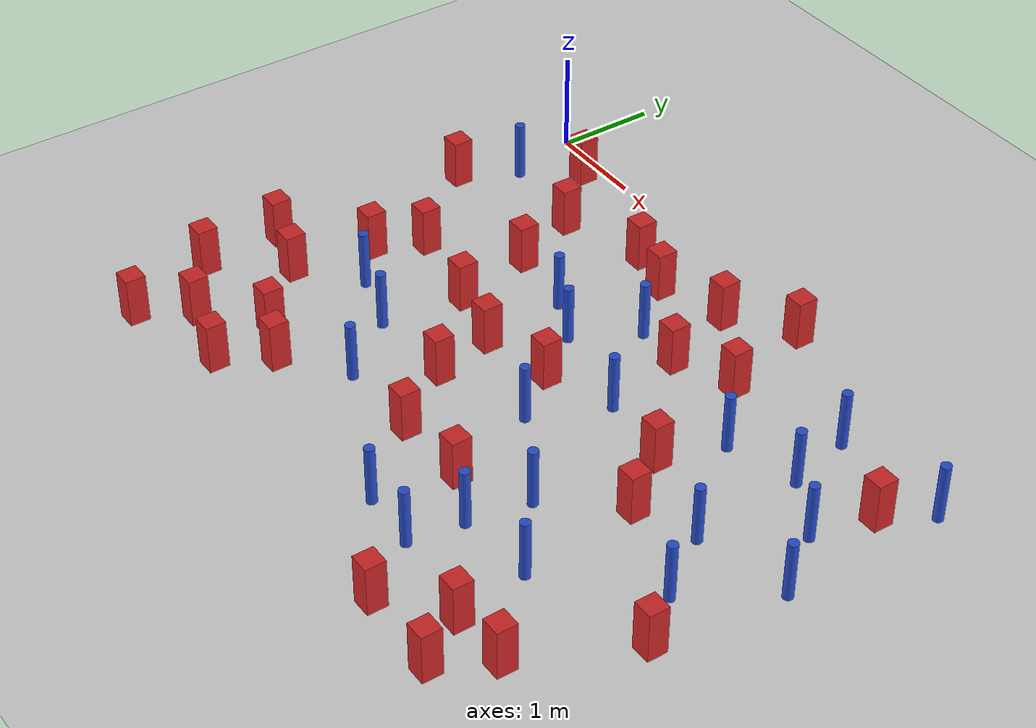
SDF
<sdf version="1.6">
 <world name="default">
  <model name="ground_plane">
   <static>1</static>
   <link name="link">
    <collision name="collision">
     <geometry><plane><normal>0 0 1</normal><size>100 100</size></plane></geometry>
     <surface><friction><ode><mu>100</mu><mu2>50</mu2></ode></friction></surface>
    </collision>
    <visual name="visual">
     <cast_shadows>0</cast_shadows>
     <geometry><plane><normal>0 0 1</normal><size>100 100</size></plane></geometry>
     <material>
      <ambient>1.0 1.0 1.0 1.0</ambient>
      <diffuse>0.8 0.8 0.8 1.0</diffuse>
      <specular>0.01 0.01 0.01 1.000000</specular>
     </material>
    </visual>
   </link>
  </model>
  <model name="pole_obstacle2">
   <static>true</static>
   <pose>5.19550027576 -0.776458486544 -9.47619616065e-06 5.49618799737e-07 2.36310414061e-07 -1.550905348e-07</pose>
   <link name="link">
    <pose>0 0 0.3 0 -0 0</pose>
    <inertial>
     <mass>1</mass>
     <inertia><ixx>0.145833</ixx><ixy>0</ixy><ixz>0</ixz><iyy>0.145833</iyy><iyz>0</iyz><izz>0.125</izz></inertia>
    </inertial>
    <collision name="collision">
     <geometry><cylinder><radius>0.05</radius><length>.6</length></cylinder></geometry>
    </collision>
    <visual name="visual">
     <geometry><cylinder><radius>0.05</radius><length>.6</length></cylinder></geometry>
     <material>
      <script><name>Gazebo/Blue</name><uri>file://media/materials/scripts/gazebo.material</uri></script>
     </material>
    </visual>
   </link>
  </model>
  <model name="square_post_obstacle15">
   <static>true</static>
   <pose>1.47501391211 -1.55873065129 -6.11067671241e-07 -5.50515727128e-06 -8.79689657224e-07 2.37013304536e-05</pose>
   <link name="link">
    <pose>0 0 0.25 0 -0 0</pose>
    <inertial>
     <mass>100</mass>
     <inertia>
      <ixx>0.166667</ixx>
      <ixy>0</ixy>
      <ixz>0</ixz>
      <iyy>0.166667</iyy>
      <iyz>0</iyz>
      <izz>0.166667</izz>
     </inertia>
    </inertial>
    <collision name="collision"><geometry><box><size>.2 .2 .5</size></box></geometry></collision>
    <visual name="visual">
     <geometry><box><size>.2 .2 .5</size></box></geometry>
     <material>
      <script><name>Gazebo/Red</name><uri>file://media/materials/scripts/gazebo.material</uri></script>
     </material>
    </visual>
   </link>
  </model>
  <model name="square_post_obstacle21">
   <static>true</static>
   <pose>0.481305501082 -2.64464810082 -6.11067671241e-07 -5.50515727128e-06 -8.79689657224e-07 2.37013304536e-05</pose>
   <link name="link">
    <pose>0 0 0.25 0 -0 0</pose>
    <inertial>
     <mass>100</mass>
     <inertia>
      <ixx>0.166667</ixx>
      <ixy>0</ixy>
      <ixz>0</ixz>
      <iyy>0.166667</iyy>
      <iyz>0</iyz>
      <izz>0.166667</izz>
     </inertia>
    </inertial>
    <collision name="collision"><geometry><box><size>.2 .2 .5</size></box></geometry></collision>
    <visual name="visual">
     <geometry><box><size>.2 .2 .5</size></box></geometry>
     <material>
      <script><name>Gazebo/Red</name><uri>file://media/materials/scripts/gazebo.material</uri></script>
     </material>
    </visual>
   </link>
  </model>
  <model name="square_post_obstacle23">
   <static>true</static>
   <pose>-0.0821357140511 -1.2840179583 -6.11067671241e-07 -5.50515727128e-06 -8.79689657224e-07 2.37013304536e-05</pose>
   <link name="link">
    <pose>0 0 0.25 0 -0 0</pose>
    <inertial>
     <mass>100</mass>
     <inertia>
      <ixx>0.166667</ixx>
      <ixy>0</ixy>
      <ixz>0</ixz>
      <iyy>0.166667</iyy>
      <iyz>0</iyz>
      <izz>0.166667</izz>
     </inertia>
    </inertial>
    <collision name="collision"><geometry><box><size>.2 .2 .5</size></box></geometry></collision>
    <visual name="visual">
     <geometry><box><size>.2 .2 .5</size></box></geometry>
     <material>
      <script><name>Gazebo/Red</name><uri>file://media/materials/scripts/gazebo.material</uri></script>
     </material>
    </visual>
   </link>
  </model>
  <model name="pole_obstacle20">
   <static>true</static>
   <pose>4.18166565589 -4.01385830783 -9.47619616065e-06 5.49618799737e-07 2.36310414037e-07 -1.55090534813e-07</pose>
   <link name="link">
    <pose>0 0 0.3 0 -0 0</pose>
    <inertial>
     <mass>1</mass>
     <inertia><ixx>0.145833</ixx><ixy>0</ixy><ixz>0</ixz><iyy>0.145833</iyy><iyz>0</iyz><izz>0.125</izz></inertia>
    </inertial>
    <collision name="collision">
     <geometry><cylinder><radius>0.05</radius><length>.6</length></cylinder></geometry>
    </collision>
    <visual name="visual">
     <geometry><cylinder><radius>0.05</radius><length>.6</length></cylinder></geometry>
     <material>
      <script><name>Gazebo/Blue</name><uri>file://media/materials/scripts/gazebo.material</uri></script>
     </material>
    </visual>
   </link>
  </model>
  <model name="square_post_obstacle33">
   <static>true</static>
   <pose>-0.207663381894 -3.29096670335 -6.11067671241e-07 -5.50515727128e-06 -8.79689657224e-07 2.37013304536e-05</pose>
   <link name="link">
    <pose>0 0 0.25 0 -0 0</pose>
    <inertial>
     <mass>100</mass>
     <inertia>
      <ixx>0.166667</ixx>
      <ixy>0</ixy>
      <ixz>0</ixz>
      <iyy>0.166667</iyy>
      <iyz>0</iyz>
      <izz>0.166667</izz>
     </inertia>
    </inertial>
    <collision name="collision"><geometry><box><size>.2 .2 .5</size></box></geometry></collision>
    <visual name="visual">
     <geometry><box><size>.2 .2 .5</size></box></geometry>
     <material>
      <script><name>Gazebo/Red</name><uri>file://media/materials/scripts/gazebo.material</uri></script>
     </material>
    </visual>
   </link>
  </model>
  <model name="square_post_obstacle37">
   <static>true</static>
   <pose>2.30294669285 -2.53560770413 -6.11067671241e-07 -5.50515727128e-06 -8.79689657224e-07 2.37013304536e-05</pose>
   <link name="link">
    <pose>0 0 0.25 0 -0 0</pose>
    <inertial>
     <mass>100</mass>
     <inertia>
      <ixx>0.166667</ixx>
      <ixy>0</ixy>
      <ixz>0</ixz>
      <iyy>0.166667</iyy>
      <iyz>0</iyz>
      <izz>0.166667</izz>
     </inertia>
    </inertial>
    <collision name="collision"><geometry><box><size>.2 .2 .5</size></box></geometry></collision>
    <visual name="visual">
     <geometry><box><size>.2 .2 .5</size></box></geometry>
     <material>
      <script><name>Gazebo/Red</name><uri>file://media/materials/scripts/gazebo.material</uri></script>
     </material>
    </visual>
   </link>
  </model>
  <model name="pole_obstacle39">
   <static>true</static>
   <pose>5.41920149734 -2.54125548383 -9.47619616065e-06 5.49618799738e-07 2.36310414051e-07 -1.55090534805e-07</pose>
   <link name="link">
    <pose>0 0 0.3 0 -0 0</pose>
    <inertial>
     <mass>1</mass>
     <inertia><ixx>0.145833</ixx><ixy>0</ixy><ixz>0</ixz><iyy>0.145833</iyy><iyz>0</iyz><izz>0.125</izz></inertia>
    </inertial>
    <collision name="collision">
     <geometry><cylinder><radius>0.05</radius><length>.6</length></cylinder></geometry>
    </collision>
    <visual name="visual">
     <geometry><cylinder><radius>0.05</radius><length>.6</length></cylinder></geometry>
     <material>
      <script><name>Gazebo/Blue</name><uri>file://media/materials/scripts/gazebo.material</uri></script>
     </material>
    </visual>
   </link>
  </model>
  <model name="pole_obstacle45">
   <static>true</static>
   <pose>4.66149572074 -1.61816872461 -9.47619616065e-06 5.49618799738e-07 2.36310414071e-07 -1.55090534796e-07</pose>
   <link name="link">
    <pose>0 0 0.3 0 -0 0</pose>
    <inertial>
     <mass>1</mass>
     <inertia><ixx>0.145833</ixx><ixy>0</ixy><ixz>0</ixz><iyy>0.145833</iyy><iyz>0</iyz><izz>0.125</izz></inertia>
    </inertial>
    <collision name="collision">
     <geometry><cylinder><radius>0.05</radius><length>.6</length></cylinder></geometry>
    </collision>
    <visual name="visual">
     <geometry><cylinder><radius>0.05</radius><length>.6</length></cylinder></geometry>
     <material>
      <script><name>Gazebo/Blue</name><uri>file://media/materials/scripts/gazebo.material</uri></script>
     </material>
    </visual>
   </link>
  </model>
  <model name="square_post_obstacle43">
   <static>true</static>
   <pose>3.66844501053 -3.76708287338 -6.11067671241e-07 -5.50515727128e-06 -8.79689657224e-07 2.37013304536e-05</pose>
   <link name="link">
    <pose>0 0 0.25 0 -0 0</pose>
    <inertial>
     <mass>100</mass>
     <inertia>
      <ixx>0.166667</ixx>
      <ixy>0</ixy>
      <ixz>0</ixz>
      <iyy>0.166667</iyy>
      <iyz>0</iyz>
      <izz>0.166667</izz>
     </inertia>
    </inertial>
    <collision name="collision"><geometry><box><size>.2 .2 .5</size></box></geometry></collision>
    <visual name="visual">
     <geometry><box><size>.2 .2 .5</size></box></geometry>
     <material>
      <script><name>Gazebo/Red</name><uri>file://media/materials/scripts/gazebo.material</uri></script>
     </material>
    </visual>
   </link>
  </model>
  <model name="square_post_obstacle47">
   <static>true</static>
   <pose>5.08457983979 -4.68502493275 -6.11067671241e-07 -5.50515727128e-06 -8.79689657224e-07 2.37013304536e-05</pose>
   <link name="link">
    <pose>0 0 0.25 0 -0 0</pose>
    <inertial>
     <mass>100</mass>
     <inertia>
      <ixx>0.166667</ixx>
      <ixy>0</ixy>
      <ixz>0</ixz>
      <iyy>0.166667</iyy>
      <iyz>0</iyz>
      <izz>0.166667</izz>
     </inertia>
    </inertial>
    <collision name="collision"><geometry><box><size>.2 .2 .5</size></box></geometry></collision>
    <visual name="visual">
     <geometry><box><size>.2 .2 .5</size></box></geometry>
     <material>
      <script><name>Gazebo/Red</name><uri>file://media/materials/scripts/gazebo.material</uri></script>
     </material>
    </visual>
   </link>
  </model>
  <model name="pole_obstacle53">
   <static>true</static>
   <pose>4.09706377436 -4.54481526896 -9.47619616065e-06 5.49618799737e-07 2.36310414037e-07 -1.55090534814e-07</pose>
   <link name="link">
    <pose>0 0 0.3 0 -0 0</pose>
    <inertial>
     <mass>1</mass>
     <inertia><ixx>0.145833</ixx><ixy>0</ixy><ixz>0</ixz><iyy>0.145833</iyy><iyz>0</iyz><izz>0.125</izz></inertia>
    </inertial>
    <collision name="collision">
     <geometry><cylinder><radius>0.05</radius><length>.6</length></cylinder></geometry>
    </collision>
    <visual name="visual">
     <geometry><cylinder><radius>0.05</radius><length>.6</length></cylinder></geometry>
     <material>
      <script><name>Gazebo/Blue</name><uri>file://media/materials/scripts/gazebo.material</uri></script>
     </material>
    </visual>
   </link>
  </model>
  <model name="square_post_obstacle65">
   <static>true</static>
   <pose>2.07261287586 -0.609898798165 -6.11067671241e-07 -5.50515727128e-06 -8.79689657224e-07 2.37013304536e-05</pose>
   <link name="link">
    <pose>0 0 0.25 0 -0 0</pose>
    <inertial>
     <mass>100</mass>
     <inertia>
      <ixx>0.166667</ixx>
      <ixy>0</ixy>
      <ixz>0</ixz>
      <iyy>0.166667</iyy>
      <iyz>0</iyz>
      <izz>0.166667</izz>
     </inertia>
    </inertial>
    <collision name="collision"><geometry><box><size>.2 .2 .5</size></box></geometry></collision>
    <visual name="visual">
     <geometry><box><size>.2 .2 .5</size></box></geometry>
     <material>
      <script><name>Gazebo/Red</name><uri>file://media/materials/scripts/gazebo.material</uri></script>
     </material>
    </visual>
   </link>
  </model>
  <model name="square_post_obstacle69">
   <static>true</static>
   <pose>6.07967221946 -1.1719388864 -6.11067671241e-07 -5.50515727128e-06 -8.79689657224e-07 2.37013304536e-05</pose>
   <link name="link">
    <pose>0 0 0.25 0 -0 0</pose>
    <inertial>
     <mass>100</mass>
     <inertia>
      <ixx>0.166667</ixx>
      <ixy>0</ixy>
      <ixz>0</ixz>
      <iyy>0.166667</iyy>
      <iyz>0</iyz>
      <izz>0.166667</izz>
     </inertia>
    </inertial>
    <collision name="collision"><geometry><box><size>.2 .2 .5</size></box></geometry></collision>
    <visual name="visual">
     <geometry><box><size>.2 .2 .5</size></box></geometry>
     <material>
      <script><name>Gazebo/Red</name><uri>file://media/materials/scripts/gazebo.material</uri></script>
     </material>
    </visual>
   </link>
  </model>
  <model name="square_post_obstacle73">
   <static>true</static>
   <pose>4.08148342454 -1.07248667827 -6.11067671241e-07 -5.50515727128e-06 -8.79689657224e-07 2.37013304536e-05</pose>
   <link name="link">
    <pose>0 0 0.25 0 -0 0</pose>
    <inertial>
     <mass>100</mass>
     <inertia>
      <ixx>0.166667</ixx>
      <ixy>0</ixy>
      <ixz>0</ixz>
      <iyy>0.166667</iyy>
      <iyz>0</iyz>
      <izz>0.166667</izz>
     </inertia>
    </inertial>
    <collision name="collision"><geometry><box><size>.2 .2 .5</size></box></geometry></collision>
    <visual name="visual">
     <geometry><box><size>.2 .2 .5</size></box></geometry>
     <material>
      <script><name>Gazebo/Red</name><uri>file://media/materials/scripts/gazebo.material</uri></script>
     </material>
    </visual>
   </link>
  </model>
  <model name="square_post_obstacle76">
   <static>true</static>
   <pose>1.43372690035 -4.2537900178 -6.11067671241e-07 -5.50515727128e-06 -8.79689657224e-07 2.37013304536e-05</pose>
   <link name="link">
    <pose>0 0 0.25 0 -0 0</pose>
    <inertial>
     <mass>100</mass>
     <inertia>
      <ixx>0.166667</ixx>
      <ixy>0</ixy>
      <ixz>0</ixz>
      <iyy>0.166667</iyy>
      <iyz>0</iyz>
      <izz>0.166667</izz>
     </inertia>
    </inertial>
    <collision name="collision"><geometry><box><size>.2 .2 .5</size></box></geometry></collision>
    <visual name="visual">
     <geometry><box><size>.2 .2 .5</size></box></geometry>
     <material>
      <script><name>Gazebo/Red</name><uri>file://media/materials/scripts/gazebo.material</uri></script>
     </material>
    </visual>
   </link>
  </model>
  <model name="pole_obstacle74">
   <static>true</static>
   <pose>2.656676595 -1.88052900401 -9.47619616065e-06 5.49618799737e-07 2.36310414072e-07 -1.55090534793e-07</pose>
   <link name="link">
    <pose>0 0 0.3 0 -0 0</pose>
    <inertial>
     <mass>1</mass>
     <inertia><ixx>0.145833</ixx><ixy>0</ixy><ixz>0</ixz><iyy>0.145833</iyy><iyz>0</iyz><izz>0.125</izz></inertia>
    </inertial>
    <collision name="collision">
     <geometry><cylinder><radius>0.05</radius><length>.6</length></cylinder></geometry>
    </collision>
    <visual name="visual">
     <geometry><cylinder><radius>0.05</radius><length>.6</length></cylinder></geometry>
     <material>
      <script><name>Gazebo/Blue</name><uri>file://media/materials/scripts/gazebo.material</uri></script>
     </material>
    </visual>
   </link>
  </model>
  <model name="pole_obstacle77">
   <static>true</static>
   <pose>4.95755923094 -3.94722236629 -9.47619616065e-06 5.49618799738e-07 2.36310414051e-07 -1.55090534805e-07</pose>
   <link name="link">
    <pose>0 0 0.3 0 -0 0</pose>
    <inertial>
     <mass>1</mass>
     <inertia><ixx>0.145833</ixx><ixy>0</ixy><ixz>0</ixz><iyy>0.145833</iyy><iyz>0</iyz><izz>0.125</izz></inertia>
    </inertial>
    <collision name="collision">
     <geometry><cylinder><radius>0.05</radius><length>.6</length></cylinder></geometry>
    </collision>
    <visual name="visual">
     <geometry><cylinder><radius>0.05</radius><length>.6</length></cylinder></geometry>
     <material>
      <script><name>Gazebo/Blue</name><uri>file://media/materials/scripts/gazebo.material</uri></script>
     </material>
    </visual>
   </link>
  </model>
  <model name="pole_obstacle79">
   <static>true</static>
   <pose>1.51252191009 -3.17403758673 -9.47619616065e-06 5.49618799737e-07 2.36310414062e-07 -1.55090534798e-07</pose>
   <link name="link">
    <pose>0 0 0.3 0 -0 0</pose>
    <inertial>
     <mass>1</mass>
     <inertia><ixx>0.145833</ixx><ixy>0</ixy><ixz>0</ixz><iyy>0.145833</iyy><iyz>0</iyz><izz>0.125</izz></inertia>
    </inertial>
    <collision name="collision">
     <geometry><cylinder><radius>0.05</radius><length>.6</length></cylinder></geometry>
    </collision>
    <visual name="visual">
     <geometry><cylinder><radius>0.05</radius><length>.6</length></cylinder></geometry>
     <material>
      <script><name>Gazebo/Blue</name><uri>file://media/materials/scripts/gazebo.material</uri></script>
     </material>
    </visual>
   </link>
  </model>
  <model name="square_post_obstacle78">
   <static>true</static>
   <pose>2.44017915125 -3.14225975353 -6.11067671241e-07 -5.50515727128e-06 -8.79689657224e-07 2.37013304536e-05</pose>
   <link name="link">
    <pose>0 0 0.25 0 -0 0</pose>
    <inertial>
     <mass>100</mass>
     <inertia>
      <ixx>0.166667</ixx>
      <ixy>0</ixy>
      <ixz>0</ixz>
      <iyy>0.166667</iyy>
      <iyz>0</iyz>
      <izz>0.166667</izz>
     </inertia>
    </inertial>
    <collision name="collision"><geometry><box><size>.2 .2 .5</size></box></geometry></collision>
    <visual name="visual">
     <geometry><box><size>.2 .2 .5</size></box></geometry>
     <material>
      <script><name>Gazebo/Red</name><uri>file://media/materials/scripts/gazebo.material</uri></script>
     </material>
    </visual>
   </link>
  </model>
  <model name="pole_obstacle85">
   <static>true</static>
   <pose>5.35102823847 -1.41834142784 -9.47619616065e-06 5.49618799738e-07 2.36310414071e-07 -1.55090534796e-07</pose>
   <link name="link">
    <pose>0 0 0.3 0 -0 0</pose>
    <inertial>
     <mass>1</mass>
     <inertia><ixx>0.145833</ixx><ixy>0</ixy><ixz>0</ixz><iyy>0.145833</iyy><iyz>0</iyz><izz>0.125</izz></inertia>
    </inertial>
    <collision name="collision">
     <geometry><cylinder><radius>0.05</radius><length>.6</length></cylinder></geometry>
    </collision>
    <visual name="visual">
     <geometry><cylinder><radius>0.05</radius><length>.6</length></cylinder></geometry>
     <material>
      <script><name>Gazebo/Blue</name><uri>file://media/materials/scripts/gazebo.material</uri></script>
     </material>
    </visual>
   </link>
  </model>
  <model name="pole_obstacle96">
   <static>true</static>
   <pose>3.67497966659 -2.11764040827 -9.47619616065e-06 5.49618799737e-07 2.36310414051e-07 -1.55090534807e-07</pose>
   <link name="link">
    <pose>0 0 0.3 0 -0 0</pose>
    <inertial>
     <mass>1</mass>
     <inertia><ixx>0.145833</ixx><ixy>0</ixy><ixz>0</ixz><iyy>0.145833</iyy><iyz>0</iyz><izz>0.125</izz></inertia>
    </inertial>
    <collision name="collision">
     <geometry><cylinder><radius>0.05</radius><length>.6</length></cylinder></geometry>
    </collision>
    <visual name="visual">
     <geometry><cylinder><radius>0.05</radius><length>.6</length></cylinder></geometry>
     <material>
      <script><name>Gazebo/Blue</name><uri>file://media/materials/scripts/gazebo.material</uri></script>
     </material>
    </visual>
   </link>
  </model>
  <model name="square_post_obstacle87">
   <static>true</static>
   <pose>0.438590694278 -4.53500111439 -6.11067671241e-07 -5.50515727128e-06 -8.79689657224e-07 2.37013304536e-05</pose>
   <link name="link">
    <pose>0 0 0.25 0 -0 0</pose>
    <inertial>
     <mass>100</mass>
     <inertia>
      <ixx>0.166667</ixx>
      <ixy>0</ixy>
      <ixz>0</ixz>
      <iyy>0.166667</iyy>
      <iyz>0</iyz>
      <izz>0.166667</izz>
     </inertia>
    </inertial>
    <collision name="collision"><geometry><box><size>.2 .2 .5</size></box></geometry></collision>
    <visual name="visual">
     <geometry><box><size>.2 .2 .5</size></box></geometry>
     <material>
      <script><name>Gazebo/Red</name><uri>file://media/materials/scripts/gazebo.material</uri></script>
     </material>
    </visual>
   </link>
  </model>
  <model name="pole_obstacle103">
   <static>true</static>
   <pose>5.8195225981 -3.13530498369 -9.47619616065e-06 5.49618799738e-07 2.36310414051e-07 -1.55090534805e-07</pose>
   <link name="link">
    <pose>0 0 0.3 0 -0 0</pose>
    <inertial>
     <mass>1</mass>
     <inertia><ixx>0.145833</ixx><ixy>0</ixy><ixz>0</ixz><iyy>0.145833</iyy><iyz>0</iyz><izz>0.125</izz></inertia>
    </inertial>
    <collision name="collision">
     <geometry><cylinder><radius>0.05</radius><length>.6</length></cylinder></geometry>
    </collision>
    <visual name="visual">
     <geometry><cylinder><radius>0.05</radius><length>.6</length></cylinder></geometry>
     <material>
      <script><name>Gazebo/Blue</name><uri>file://media/materials/scripts/gazebo.material</uri></script>
     </material>
    </visual>
   </link>
  </model>
  <model name="square_post_obstacle92">
   <static>true</static>
   <pose>5.37813633659 -5.16631480093 -6.11067671241e-07 -5.50515727128e-06 -8.79689657224e-07 2.37013304536e-05</pose>
   <link name="link">
    <pose>0 0 0.25 0 -0 0</pose>
    <inertial>
     <mass>100</mass>
     <inertia>
      <ixx>0.166667</ixx>
      <ixy>0</ixy>
      <ixz>0</ixz>
      <iyy>0.166667</iyy>
      <iyz>0</iyz>
      <izz>0.166667</izz>
     </inertia>
    </inertial>
    <collision name="collision"><geometry><box><size>.2 .2 .5</size></box></geometry></collision>
    <visual name="visual">
     <geometry><box><size>.2 .2 .5</size></box></geometry>
     <material>
      <script><name>Gazebo/Red</name><uri>file://media/materials/scripts/gazebo.material</uri></script>
     </material>
    </visual>
   </link>
  </model>
  <model name="square_post_obstacle94">
   <static>true</static>
   <pose>0.972188973137 -4.05022923755 -6.11067671241e-07 -5.50515727128e-06 -8.79689657224e-07 2.37013304536e-05</pose>
   <link name="link">
    <pose>0 0 0.25 0 -0 0</pose>
    <inertial>
     <mass>100</mass>
     <inertia>
      <ixx>0.166667</ixx>
      <ixy>0</ixy>
      <ixz>0</ixz>
      <iyy>0.166667</iyy>
      <iyz>0</iyz>
      <izz>0.166667</izz>
     </inertia>
    </inertial>
    <collision name="collision"><geometry><box><size>.2 .2 .5</size></box></geometry></collision>
    <visual name="visual">
     <geometry><box><size>.2 .2 .5</size></box></geometry>
     <material>
      <script><name>Gazebo/Red</name><uri>file://media/materials/scripts/gazebo.material</uri></script>
     </material>
    </visual>
   </link>
  </model>
  <model name="pole_obstacle107">
   <static>true</static>
   <pose>3.4985633 -4.50725524654 -9.47619616065e-06 5.49618799738e-07 2.3631041406e-07 -1.55090534801e-07</pose>
   <link name="link">
    <pose>0 0 0.3 0 -0 0</pose>
    <inertial>
     <mass>1</mass>
     <inertia><ixx>0.145833</ixx><ixy>0</ixy><ixz>0</ixz><iyy>0.145833</iyy><iyz>0</iyz><izz>0.125</izz></inertia>
    </inertial>
    <collision name="collision">
     <geometry><cylinder><radius>0.05</radius><length>.6</length></cylinder></geometry>
    </collision>
    <visual name="visual">
     <geometry><cylinder><radius>0.05</radius><length>.6</length></cylinder></geometry>
     <material>
      <script><name>Gazebo/Blue</name><uri>file://media/materials/scripts/gazebo.material</uri></script>
     </material>
    </visual>
   </link>
  </model>
  <model name="square_post_obstacle100">
   <static>true</static>
   <pose>0.360275413326 -3.45898849835 -6.11067671241e-07 -5.50515727128e-06 -8.79689657224e-07 2.37013304536e-05</pose>
   <link name="link">
    <pose>0 0 0.25 0 -0 0</pose>
    <inertial>
     <mass>100</mass>
     <inertia>
      <ixx>0.166667</ixx>
      <ixy>0</ixy>
      <ixz>0</ixz>
      <iyy>0.166667</iyy>
      <iyz>0</iyz>
      <izz>0.166667</izz>
     </inertia>
    </inertial>
    <collision name="collision"><geometry><box><size>.2 .2 .5</size></box></geometry></collision>
    <visual name="visual">
     <geometry><box><size>.2 .2 .5</size></box></geometry>
     <material>
      <script><name>Gazebo/Red</name><uri>file://media/materials/scripts/gazebo.material</uri></script>
     </material>
    </visual>
   </link>
  </model>
  <model name="square_post_obstacle101">
   <static>true</static>
   <pose>2.89818293301 -3.790156489 -6.11067671241e-07 -5.50515727128e-06 -8.79689657224e-07 2.37013304536e-05</pose>
   <link name="link">
    <pose>0 0 0.25 0 -0 0</pose>
    <inertial>
     <mass>100</mass>
     <inertia>
      <ixx>0.166667</ixx>
      <ixy>0</ixy>
      <ixz>0</ixz>
      <iyy>0.166667</iyy>
      <iyz>0</iyz>
      <izz>0.166667</izz>
     </inertia>
    </inertial>
    <collision name="collision"><geometry><box><size>.2 .2 .5</size></box></geometry></collision>
    <visual name="visual">
     <geometry><box><size>.2 .2 .5</size></box></geometry>
     <material>
      <script><name>Gazebo/Red</name><uri>file://media/materials/scripts/gazebo.material</uri></script>
     </material>
    </visual>
   </link>
  </model>
  <model name="pole_obstacle118">
   <static>true</static>
   <pose>4.29031169879 -3.40727449963 -9.47619616065e-06 5.49618799738e-07 2.36310414051e-07 -1.55090534805e-07</pose>
   <link name="link">
    <pose>0 0 0.3 0 -0 0</pose>
    <inertial>
     <mass>1</mass>
     <inertia><ixx>0.145833</ixx><ixy>0</ixy><ixz>0</ixz><iyy>0.145833</iyy><iyz>0</iyz><izz>0.125</izz></inertia>
    </inertial>
    <collision name="collision">
     <geometry><cylinder><radius>0.05</radius><length>.6</length></cylinder></geometry>
    </collision>
    <visual name="visual">
     <geometry><cylinder><radius>0.05</radius><length>.6</length></cylinder></geometry>
     <material>
      <script><name>Gazebo/Blue</name><uri>file://media/materials/scripts/gazebo.material</uri></script>
     </material>
    </visual>
   </link>
  </model>
  <model name="square_post_obstacle108">
   <static>true</static>
   <pose>5.66433562254 -4.66511169242 -6.11067671241e-07 -5.50515727128e-06 -8.79689657224e-07 2.37013304536e-05</pose>
   <link name="link">
    <pose>0 0 0.25 0 -0 0</pose>
    <inertial>
     <mass>100</mass>
     <inertia>
      <ixx>0.166667</ixx>
      <ixy>0</ixy>
      <ixz>0</ixz>
      <iyy>0.166667</iyy>
      <iyz>0</iyz>
      <izz>0.166667</izz>
     </inertia>
    </inertial>
    <collision name="collision"><geometry><box><size>.2 .2 .5</size></box></geometry></collision>
    <visual name="visual">
     <geometry><box><size>.2 .2 .5</size></box></geometry>
     <material>
      <script><name>Gazebo/Red</name><uri>file://media/materials/scripts/gazebo.material</uri></script>
     </material>
    </visual>
   </link>
  </model>
  <model name="pole_obstacle121">
   <static>true</static>
   <pose>2.19992596251 -1.66063646599 -9.47619616065e-06 5.49618799737e-07 2.36310414072e-07 -1.55090534793e-07</pose>
   <link name="link">
    <pose>0 0 0.3 0 -0 0</pose>
    <inertial>
     <mass>1</mass>
     <inertia><ixx>0.145833</ixx><ixy>0</ixy><ixz>0</ixz><iyy>0.145833</iyy><iyz>0</iyz><izz>0.125</izz></inertia>
    </inertial>
    <collision name="collision">
     <geometry><cylinder><radius>0.05</radius><length>.6</length></cylinder></geometry>
    </collision>
    <visual name="visual">
     <geometry><cylinder><radius>0.05</radius><length>.6</length></cylinder></geometry>
     <material>
      <script><name>Gazebo/Blue</name><uri>file://media/materials/scripts/gazebo.material</uri></script>
     </material>
    </visual>
   </link>
  </model>
  <model name="pole_obstacle125">
   <static>true</static>
   <pose>6.3384010679 -2.33788790532 -9.47619616065e-06 5.49618799738e-07 2.36310414051e-07 -1.55090534805e-07</pose>
   <link name="link">
    <pose>0 0 0.3 0 -0 0</pose>
    <inertial>
     <mass>1</mass>
     <inertia><ixx>0.145833</ixx><ixy>0</ixy><ixz>0</ixz><iyy>0.145833</iyy><iyz>0</iyz><izz>0.125</izz></inertia>
    </inertial>
    <collision name="collision">
     <geometry><cylinder><radius>0.05</radius><length>.6</length></cylinder></geometry>
    </collision>
    <visual name="visual">
     <geometry><cylinder><radius>0.05</radius><length>.6</length></cylinder></geometry>
     <material>
      <script><name>Gazebo/Blue</name><uri>file://media/materials/scripts/gazebo.material</uri></script>
     </material>
    </visual>
   </link>
  </model>
  <model name="pole_obstacle130">
   <static>true</static>
   <pose>2.99861401969 -1.26913660186 -9.47619616065e-06 5.49618799737e-07 2.36310414072e-07 -1.55090534793e-07</pose>
   <link name="link">
    <pose>0 0 0.3 0 -0 0</pose>
    <inertial>
     <mass>1</mass>
     <inertia><ixx>0.145833</ixx><ixy>0</ixy><ixz>0</ixz><iyy>0.145833</iyy><iyz>0</iyz><izz>0.125</izz></inertia>
    </inertial>
    <collision name="collision">
     <geometry><cylinder><radius>0.05</radius><length>.6</length></cylinder></geometry>
    </collision>
    <visual name="visual">
     <geometry><cylinder><radius>0.05</radius><length>.6</length></cylinder></geometry>
     <material>
      <script><name>Gazebo/Blue</name><uri>file://media/materials/scripts/gazebo.material</uri></script>
     </material>
    </visual>
   </link>
  </model>
  <model name="square_post_obstacle115">
   <static>true</static>
   <pose>6.17547682359 -3.60087513004 -6.11067671241e-07 -5.50515727128e-06 -8.79689657224e-07 2.37013304536e-05</pose>
   <link name="link">
    <pose>0 0 0.25 0 -0 0</pose>
    <inertial>
     <mass>100</mass>
     <inertia>
      <ixx>0.166667</ixx>
      <ixy>0</ixy>
      <ixz>0</ixz>
      <iyy>0.166667</iyy>
      <iyz>0</iyz>
      <izz>0.166667</izz>
     </inertia>
    </inertial>
    <collision name="collision"><geometry><box><size>.2 .2 .5</size></box></geometry></collision>
    <visual name="visual">
     <geometry><box><size>.2 .2 .5</size></box></geometry>
     <material>
      <script><name>Gazebo/Red</name><uri>file://media/materials/scripts/gazebo.material</uri></script>
     </material>
    </visual>
   </link>
  </model>
  <model name="pole_obstacle136">
   <static>true</static>
   <pose>0.891710038624 -2.97808980291 -9.47619616065e-06 5.49618799737e-07 2.36310414066e-07 -1.55090534797e-07</pose>
   <link name="link">
    <pose>0 0 0.3 0 -0 0</pose>
    <inertial>
     <mass>1</mass>
     <inertia><ixx>0.145833</ixx><ixy>0</ixy><ixz>0</ixz><iyy>0.145833</iyy><iyz>0</iyz><izz>0.125</izz></inertia>
    </inertial>
    <collision name="collision">
     <geometry><cylinder><radius>0.05</radius><length>.6</length></cylinder></geometry>
    </collision>
    <visual name="visual">
     <geometry><cylinder><radius>0.05</radius><length>.6</length></cylinder></geometry>
     <material>
      <script><name>Gazebo/Blue</name><uri>file://media/materials/scripts/gazebo.material</uri></script>
     </material>
    </visual>
   </link>
  </model>
  <model name="square_post_obstacle124">
   <static>true</static>
   <pose>0.112785810113 -5.00778340634 -6.11067671241e-07 -5.50515727128e-06 -8.79689657224e-07 2.37013304536e-05</pose>
   <link name="link">
    <pose>0 0 0.25 0 -0 0</pose>
    <inertial>
     <mass>100</mass>
     <inertia>
      <ixx>0.166667</ixx>
      <ixy>0</ixy>
      <ixz>0</ixz>
      <iyy>0.166667</iyy>
      <iyz>0</iyz>
      <izz>0.166667</izz>
     </inertia>
    </inertial>
    <collision name="collision"><geometry><box><size>.2 .2 .5</size></box></geometry></collision>
    <visual name="visual">
     <geometry><box><size>.2 .2 .5</size></box></geometry>
     <material>
      <script><name>Gazebo/Red</name><uri>file://media/materials/scripts/gazebo.material</uri></script>
     </material>
    </visual>
   </link>
  </model>
  <model name="square_post_obstacle131">
   <static>true</static>
   <pose>3.49886912026 -1.31557710753 -6.11067671241e-07 -5.50515727128e-06 -8.79689657224e-07 2.37013304536e-05</pose>
   <link name="link">
    <pose>0 0 0.25 0 -0 0</pose>
    <inertial>
     <mass>100</mass>
     <inertia>
      <ixx>0.166667</ixx>
      <ixy>0</ixy>
      <ixz>0</ixz>
      <iyy>0.166667</iyy>
      <iyz>0</iyz>
      <izz>0.166667</izz>
     </inertia>
    </inertial>
    <collision name="collision"><geometry><box><size>.2 .2 .5</size></box></geometry></collision>
    <visual name="visual">
     <geometry><box><size>.2 .2 .5</size></box></geometry>
     <material>
      <script><name>Gazebo/Red</name><uri>file://media/materials/scripts/gazebo.material</uri></script>
     </material>
    </visual>
   </link>
  </model>
  <model name="pole_obstacle147">
   <static>true</static>
   <pose>6.34847346183 -0.719187680588 -9.47619616065e-06 5.49618799737e-07 2.36310414061e-07 -1.550905348e-07</pose>
   <link name="link">
    <pose>0 0 0.3 0 -0 0</pose>
    <inertial>
     <mass>1</mass>
     <inertia><ixx>0.145833</ixx><ixy>0</ixy><ixz>0</ixz><iyy>0.145833</iyy><iyz>0</iyz><izz>0.125</izz></inertia>
    </inertial>
    <collision name="collision">
     <geometry><cylinder><radius>0.05</radius><length>.6</length></cylinder></geometry>
    </collision>
    <visual name="visual">
     <geometry><cylinder><radius>0.05</radius><length>.6</length></cylinder></geometry>
     <material>
      <script><name>Gazebo/Blue</name><uri>file://media/materials/scripts/gazebo.material</uri></script>
     </material>
    </visual>
   </link>
  </model>
  <model name="pole_obstacle149">
   <static>true</static>
   <pose>3.35634906083 -2.84256329724 -9.47619616065e-06 5.49618799737e-07 2.36310414051e-07 -1.55090534807e-07</pose>
   <link name="link">
    <pose>0 0 0.3 0 -0 0</pose>
    <inertial>
     <mass>1</mass>
     <inertia><ixx>0.145833</ixx><ixy>0</ixy><ixz>0</ixz><iyy>0.145833</iyy><iyz>0</iyz><izz>0.125</izz></inertia>
    </inertial>
    <collision name="collision">
     <geometry><cylinder><radius>0.05</radius><length>.6</length></cylinder></geometry>
    </collision>
    <visual name="visual">
     <geometry><cylinder><radius>0.05</radius><length>.6</length></cylinder></geometry>
     <material>
      <script><name>Gazebo/Blue</name><uri>file://media/materials/scripts/gazebo.material</uri></script>
     </material>
    </visual>
   </link>
  </model>
  <model name="square_post_obstacle141">
   <static>true</static>
   <pose>1.20938993575 -0.869790681458 -6.11067671241e-07 -5.50515727128e-06 -8.79689657224e-07 2.37013304536e-05</pose>
   <link name="link">
    <pose>0 0 0.25 0 -0 0</pose>
    <inertial>
     <mass>100</mass>
     <inertia>
      <ixx>0.166667</ixx>
      <ixy>0</ixy>
      <ixz>0</ixz>
      <iyy>0.166667</iyy>
      <iyz>0</iyz>
      <izz>0.166667</izz>
     </inertia>
    </inertial>
    <collision name="collision"><geometry><box><size>.2 .2 .5</size></box></geometry></collision>
    <visual name="visual">
     <geometry><box><size>.2 .2 .5</size></box></geometry>
     <material>
      <script><name>Gazebo/Red</name><uri>file://media/materials/scripts/gazebo.material</uri></script>
     </material>
    </visual>
   </link>
  </model>
  <model name="square_post_obstacle143">
   <static>true</static>
   <pose>1.13100426171 -4.72529624449 -6.11067671241e-07 -5.50515727128e-06 -8.79689657224e-07 2.37013304536e-05</pose>
   <link name="link">
    <pose>0 0 0.25 0 -0 0</pose>
    <inertial>
     <mass>100</mass>
     <inertia>
      <ixx>0.166667</ixx>
      <ixy>0</ixy>
      <ixz>0</ixz>
      <iyy>0.166667</iyy>
      <iyz>0</iyz>
      <izz>0.166667</izz>
     </inertia>
    </inertial>
    <collision name="collision"><geometry><box><size>.2 .2 .5</size></box></geometry></collision>
    <visual name="visual">
     <geometry><box><size>.2 .2 .5</size></box></geometry>
     <material>
      <script><name>Gazebo/Red</name><uri>file://media/materials/scripts/gazebo.material</uri></script>
     </material>
    </visual>
   </link>
  </model>
  <model name="square_post_obstacle146">
   <static>true</static>
   <pose>0.606820662175 -0.2310856686 -6.11067671241e-07 -5.50515727128e-06 -8.79689657224e-07 2.37013304536e-05</pose>
   <link name="link">
    <pose>0 0 0.25 0 -0 0</pose>
    <inertial>
     <mass>100</mass>
     <inertia>
      <ixx>0.166667</ixx>
      <ixy>0</ixy>
      <ixz>0</ixz>
      <iyy>0.166667</iyy>
      <iyz>0</iyz>
      <izz>0.166667</izz>
     </inertia>
    </inertial>
    <collision name="collision"><geometry><box><size>.2 .2 .5</size></box></geometry></collision>
    <visual name="visual">
     <geometry><box><size>.2 .2 .5</size></box></geometry>
     <material>
      <script><name>Gazebo/Red</name><uri>file://media/materials/scripts/gazebo.material</uri></script>
     </material>
    </visual>
   </link>
  </model>
  <model name="square_post_obstacle148">
   <static>true</static>
   <pose>-0.189970776533 -4.09854301361 -6.11067671241e-07 -5.50515727128e-06 -8.79689657224e-07 2.37013304536e-05</pose>
   <link name="link">
    <pose>0 0 0.25 0 -0 0</pose>
    <inertial>
     <mass>100</mass>
     <inertia>
      <ixx>0.166667</ixx>
      <ixy>0</ixy>
      <ixz>0</ixz>
      <iyy>0.166667</iyy>
      <iyz>0</iyz>
      <izz>0.166667</izz>
     </inertia>
    </inertial>
    <collision name="collision"><geometry><box><size>.2 .2 .5</size></box></geometry></collision>
    <visual name="visual">
     <geometry><box><size>.2 .2 .5</size></box></geometry>
     <material>
      <script><name>Gazebo/Red</name><uri>file://media/materials/scripts/gazebo.material</uri></script>
     </material>
    </visual>
   </link>
  </model>
  <model name="square_post_obstacle150">
   <static>true</static>
   <pose>4.46582202377 -2.24260917433 -6.11067671241e-07 -5.50515727128e-06 -8.79689657224e-07 2.37013304536e-05</pose>
   <link name="link">
    <pose>0 0 0.25 0 -0 0</pose>
    <inertial>
     <mass>100</mass>
     <inertia>
      <ixx>0.166667</ixx>
      <ixy>0</ixy>
      <ixz>0</ixz>
      <iyy>0.166667</iyy>
      <iyz>0</iyz>
      <izz>0.166667</izz>
     </inertia>
    </inertial>
    <collision name="collision"><geometry><box><size>.2 .2 .5</size></box></geometry></collision>
    <visual name="visual">
     <geometry><box><size>.2 .2 .5</size></box></geometry>
     <material>
      <script><name>Gazebo/Red</name><uri>file://media/materials/scripts/gazebo.material</uri></script>
     </material>
    </visual>
   </link>
  </model>
  <model name="square_post_obstacle155">
   <static>true</static>
   <pose>1.64530924996 -2.36486074039 -6.11067671241e-07 -5.50515727128e-06 -8.79689657224e-07 2.37013304536e-05</pose>
   <link name="link">
    <pose>0 0 0.25 0 -0 0</pose>
    <inertial>
     <mass>100</mass>
     <inertia>
      <ixx>0.166667</ixx>
      <ixy>0</ixy>
      <ixz>0</ixz>
      <iyy>0.166667</iyy>
      <iyz>0</iyz>
      <izz>0.166667</izz>
     </inertia>
    </inertial>
    <collision name="collision"><geometry><box><size>.2 .2 .5</size></box></geometry></collision>
    <visual name="visual">
     <geometry><box><size>.2 .2 .5</size></box></geometry>
     <material>
      <script><name>Gazebo/Red</name><uri>file://media/materials/scripts/gazebo.material</uri></script>
     </material>
    </visual>
   </link>
  </model>
  <model name="square_post_obstacle160">
   <static>true</static>
   <pose>3.85158098312 -0.136917456022 -6.11067671241e-07 -5.50515727128e-06 -8.79689657224e-07 2.37013304536e-05</pose>
   <link name="link">
    <pose>0 0 0.25 0 -0 0</pose>
    <inertial>
     <mass>100</mass>
     <inertia>
      <ixx>0.166667</ixx>
      <ixy>0</ixy>
      <ixz>0</ixz>
      <iyy>0.166667</iyy>
      <iyz>0</iyz>
      <izz>0.166667</izz>
     </inertia>
    </inertial>
    <collision name="collision"><geometry><box><size>.2 .2 .5</size></box></geometry></collision>
    <visual name="visual">
     <geometry><box><size>.2 .2 .5</size></box></geometry>
     <material>
      <script><name>Gazebo/Red</name><uri>file://media/materials/scripts/gazebo.material</uri></script>
     </material>
    </visual>
   </link>
  </model>
  <model name="square_post_obstacle163">
   <static>true</static>
   <pose>0.71571775969 -2.1767719302 -6.11067671241e-07 -5.50515727128e-06 -8.79689657224e-07 2.37013304536e-05</pose>
   <link name="link">
    <pose>0 0 0.25 0 -0 0</pose>
    <inertial>
     <mass>100</mass>
     <inertia>
      <ixx>0.166667</ixx>
      <ixy>0</ixy>
      <ixz>0</ixz>
      <iyy>0.166667</iyy>
      <iyz>0</iyz>
      <izz>0.166667</izz>
     </inertia>
    </inertial>
    <collision name="collision"><geometry><box><size>.2 .2 .5</size></box></geometry></collision>
    <visual name="visual">
     <geometry><box><size>.2 .2 .5</size></box></geometry>
     <material>
      <script><name>Gazebo/Red</name><uri>file://media/materials/scripts/gazebo.material</uri></script>
     </material>
    </visual>
   </link>
  </model>
  <model name="pole_obstacle180">
   <static>true</static>
   <pose>5.9229400913 -1.76313882777 -9.47619616065e-06 5.49618799738e-07 2.36310414071e-07 -1.55090534796e-07</pose>
   <link name="link">
    <pose>0 0 0.3 0 -0 0</pose>
    <inertial>
     <mass>1</mass>
     <inertia><ixx>0.145833</ixx><ixy>0</ixy><ixz>0</ixz><iyy>0.145833</iyy><iyz>0</iyz><izz>0.125</izz></inertia>
    </inertial>
    <collision name="collision">
     <geometry><cylinder><radius>0.05</radius><length>.6</length></cylinder></geometry>
    </collision>
    <visual name="visual">
     <geometry><cylinder><radius>0.05</radius><length>.6</length></cylinder></geometry>
     <material>
      <script><name>Gazebo/Blue</name><uri>file://media/materials/scripts/gazebo.material</uri></script>
     </material>
    </visual>
   </link>
  </model>
  <model name="square_post_obstacle170">
   <static>true</static>
   <pose>3.25160246757 -0.545764650824 -6.11067671241e-07 -5.50515727128e-06 -8.79689657224e-07 2.37013304536e-05</pose>
   <link name="link">
    <pose>0 0 0.25 0 -0 0</pose>
    <inertial>
     <mass>100</mass>
     <inertia>
      <ixx>0.166667</ixx>
      <ixy>0</ixy>
      <ixz>0</ixz>
      <iyy>0.166667</iyy>
      <iyz>0</iyz>
      <izz>0.166667</izz>
     </inertia>
    </inertial>
    <collision name="collision"><geometry><box><size>.2 .2 .5</size></box></geometry></collision>
    <visual name="visual">
     <geometry><box><size>.2 .2 .5</size></box></geometry>
     <material>
      <script><name>Gazebo/Red</name><uri>file://media/materials/scripts/gazebo.material</uri></script>
     </material>
    </visual>
   </link>
  </model>
  <model name="square_post_obstacle171">
   <static>true</static>
   <pose>4.86031752476 -2.78045040735 -6.11067671241e-07 -5.50515727128e-06 -8.79689657224e-07 2.37013304536e-05</pose>
   <link name="link">
    <pose>0 0 0.25 0 -0 0</pose>
    <inertial>
     <mass>100</mass>
     <inertia>
      <ixx>0.166667</ixx>
      <ixy>0</ixy>
      <ixz>0</ixz>
      <iyy>0.166667</iyy>
      <iyz>0</iyz>
      <izz>0.166667</izz>
     </inertia>
    </inertial>
    <collision name="collision"><geometry><box><size>.2 .2 .5</size></box></geometry></collision>
    <visual name="visual">
     <geometry><box><size>.2 .2 .5</size></box></geometry>
     <material>
      <script><name>Gazebo/Red</name><uri>file://media/materials/scripts/gazebo.material</uri></script>
     </material>
    </visual>
   </link>
  </model>
  <model name="square_post_obstacle174">
   <static>true</static>
   <pose>2.56031359886 -0.743147471717 -6.11067671241e-07 -5.50515727128e-06 -8.79689657224e-07 2.37013304536e-05</pose>
   <link name="link">
    <pose>0 0 0.25 0 -0 0</pose>
    <inertial>
     <mass>100</mass>
     <inertia>
      <ixx>0.166667</ixx>
      <ixy>0</ixy>
      <ixz>0</ixz>
      <iyy>0.166667</iyy>
      <iyz>0</iyz>
      <izz>0.166667</izz>
     </inertia>
    </inertial>
    <collision name="collision"><geometry><box><size>.2 .2 .5</size></box></geometry></collision>
    <visual name="visual">
     <geometry><box><size>.2 .2 .5</size></box></geometry>
     <material>
      <script><name>Gazebo/Red</name><uri>file://media/materials/scripts/gazebo.material</uri></script>
     </material>
    </visual>
   </link>
  </model>
  <model name="square_post_obstacle179">
   <static>true</static>
   <pose>3.01984169322 -2.3802064307 -6.11067671241e-07 -5.50515727128e-06 -8.79689657224e-07 2.37013304536e-05</pose>
   <link name="link">
    <pose>0 0 0.25 0 -0 0</pose>
    <inertial>
     <mass>100</mass>
     <inertia>
      <ixx>0.166667</ixx>
      <ixy>0</ixy>
      <ixz>0</ixz>
      <iyy>0.166667</iyy>
      <iyz>0</iyz>
      <izz>0.166667</izz>
     </inertia>
    </inertial>
    <collision name="collision"><geometry><box><size>.2 .2 .5</size></box></geometry></collision>
    <visual name="visual">
     <geometry><box><size>.2 .2 .5</size></box></geometry>
     <material>
      <script><name>Gazebo/Red</name><uri>file://media/materials/scripts/gazebo.material</uri></script>
     </material>
    </visual>
   </link>
  </model>
  <model name="pole_obstacle192">
   <static>true</static>
   <pose>2.00214027558 -3.79118549773 -9.47619616065e-06 5.49618799738e-07 2.36310414047e-07 -1.55090534808e-07</pose>
   <link name="link">
    <pose>0 0 0.3 0 -0 0</pose>
    <inertial>
     <mass>1</mass>
     <inertia><ixx>0.145833</ixx><ixy>0</ixy><ixz>0</ixz><iyy>0.145833</iyy><iyz>0</iyz><izz>0.125</izz></inertia>
    </inertial>
    <collision name="collision">
     <geometry><cylinder><radius>0.05</radius><length>.6</length></cylinder></geometry>
    </collision>
    <visual name="visual">
     <geometry><cylinder><radius>0.05</radius><length>.6</length></cylinder></geometry>
     <material>
      <script><name>Gazebo/Blue</name><uri>file://media/materials/scripts/gazebo.material</uri></script>
     </material>
    </visual>
   </link>
  </model>
  <model name="square_post_obstacle196">
   <static>true</static>
   <pose>4.51927541458 -5.13663456118 -6.11067671241e-07 -5.50515727128e-06 -8.79689657224e-07 2.37013304536e-05</pose>
   <link name="link">
    <pose>0 0 0.25 0 -0 0</pose>
    <inertial>
     <mass>100</mass>
     <inertia>
      <ixx>0.166667</ixx>
      <ixy>0</ixy>
      <ixz>0</ixz>
      <iyy>0.166667</iyy>
      <iyz>0</iyz>
      <izz>0.166667</izz>
     </inertia>
    </inertial>
    <collision name="collision"><geometry><box><size>.2 .2 .5</size></box></geometry></collision>
    <visual name="visual">
     <geometry><box><size>.2 .2 .5</size></box></geometry>
     <material>
      <script><name>Gazebo/Red</name><uri>file://media/materials/scripts/gazebo.material</uri></script>
     </material>
    </visual>
   </link>
  </model>
  <model name="pole_obstacle230">
   <static>true</static>
   <pose>0.199183874411 -0.72463418371 -9.47619616065e-06 5.49618799737e-07 2.36310414049e-07 -1.55090534807e-07</pose>
   <link name="link">
    <pose>0 0 0.3 0 -0 0</pose>
    <inertial>
     <mass>1</mass>
     <inertia><ixx>0.145833</ixx><ixy>0</ixy><ixz>0</ixz><iyy>0.145833</iyy><iyz>0</iyz><izz>0.125</izz></inertia>
    </inertial>
    <collision name="collision">
     <geometry><cylinder><radius>0.05</radius><length>.6</length></cylinder></geometry>
    </collision>
    <visual name="visual">
     <geometry><cylinder><radius>0.05</radius><length>.6</length></cylinder></geometry>
     <material>
      <script><name>Gazebo/Blue</name><uri>file://media/materials/scripts/gazebo.material</uri></script>
     </material>
    </visual>
   </link>
  </model>
 </world>
</sdf>
